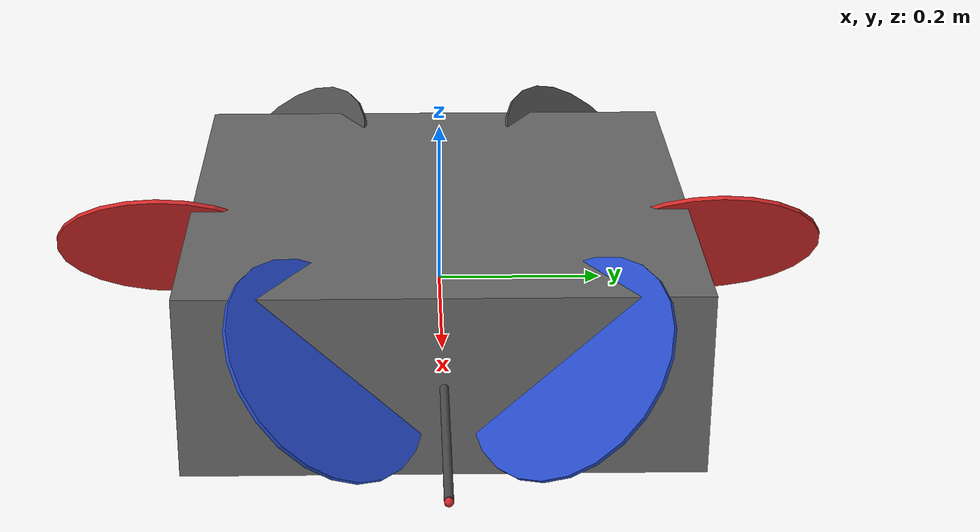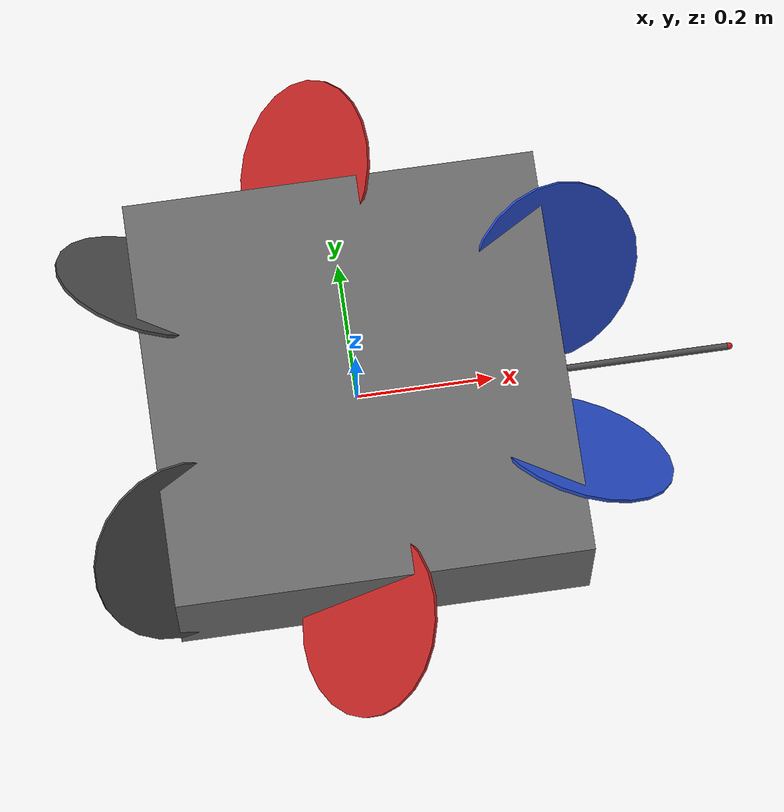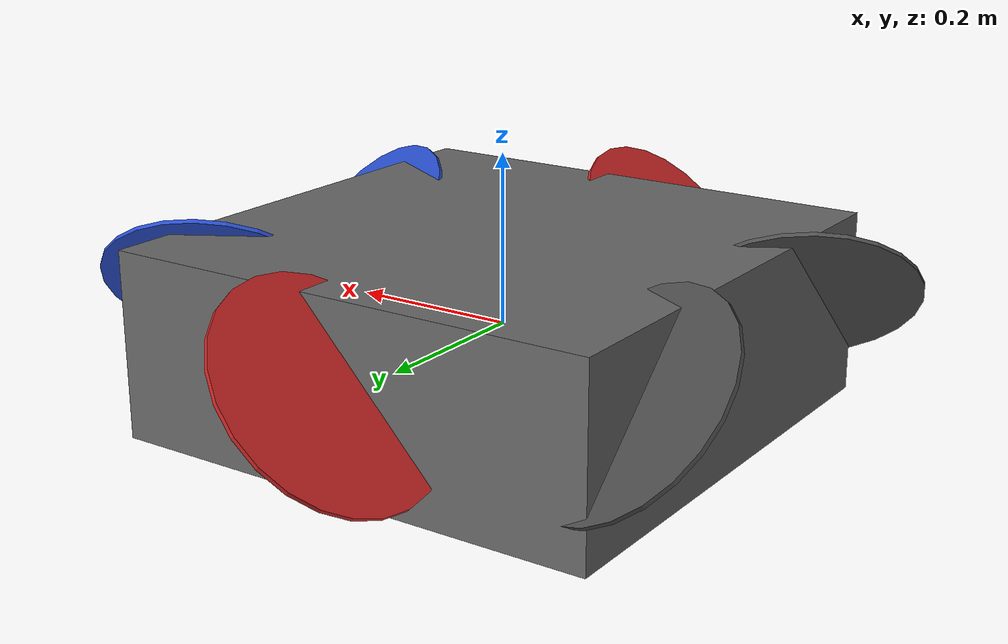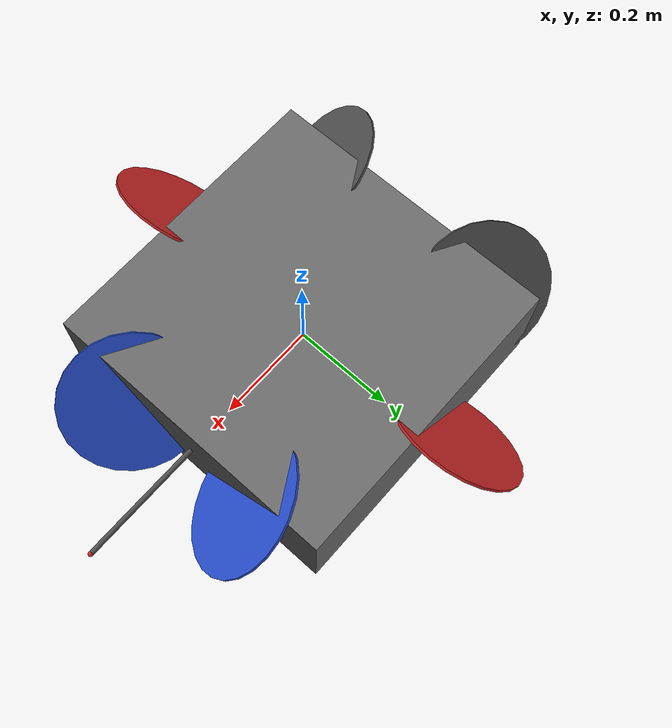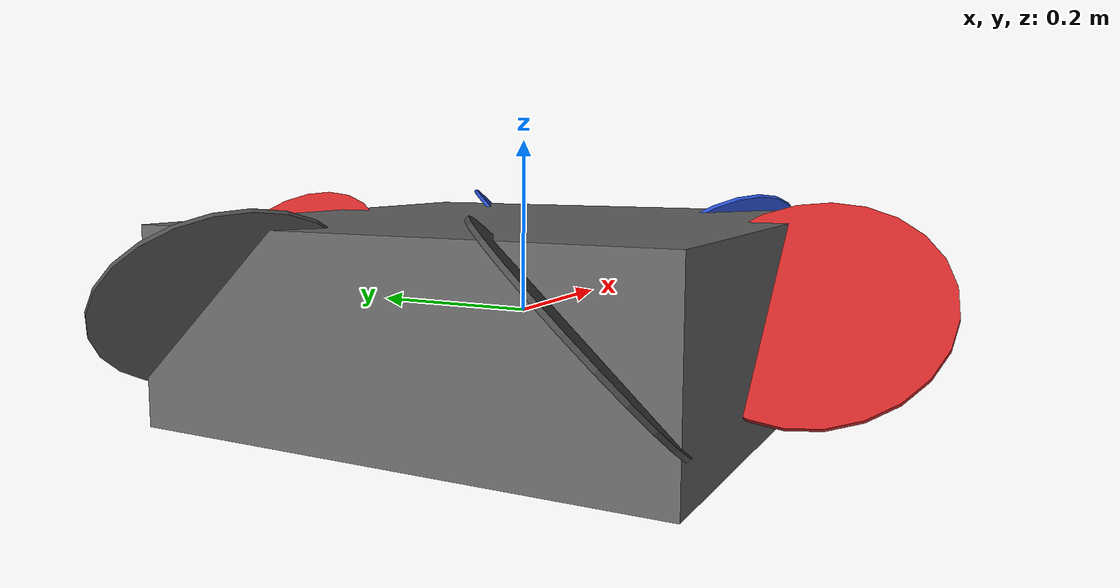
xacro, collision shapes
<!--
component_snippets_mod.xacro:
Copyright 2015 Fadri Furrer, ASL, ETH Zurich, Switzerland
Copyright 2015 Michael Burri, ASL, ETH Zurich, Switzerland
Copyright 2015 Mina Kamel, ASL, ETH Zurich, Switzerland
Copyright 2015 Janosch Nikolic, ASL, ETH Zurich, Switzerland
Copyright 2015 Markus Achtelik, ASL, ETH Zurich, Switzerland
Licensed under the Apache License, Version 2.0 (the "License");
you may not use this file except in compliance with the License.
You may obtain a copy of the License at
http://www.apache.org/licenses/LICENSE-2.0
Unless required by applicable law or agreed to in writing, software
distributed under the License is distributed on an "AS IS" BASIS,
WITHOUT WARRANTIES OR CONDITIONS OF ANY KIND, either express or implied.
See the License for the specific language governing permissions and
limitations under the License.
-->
<?xml version="1.0"?>

<robot name="betaX" xmlns:xacro="http://ros.org/wiki/xacro">
  <xacro:include filename="$(find spc_uav_description)/urdf/component_snippets_mod.xacro" />

    <!-- Included URDF Files -->
  <xacro:include filename="$(find spc_uav_description)/urdf/multirotor_base_mod.xacro" />

  <!-- Instantiate iris "mechanics" -->
  <xacro:include filename="$(find spc_uav_description)/urdf/betaX.xacro" />

    <xacro:arg name='mavlink_addr' default='INADDR_ANY' />
  <xacro:arg name='mavlink_udp_port' default='14560' />
  <xacro:arg name='enable_logging' default='false'/>
  <xacro:arg name='enable_ground_truth' default='false'/>
  <xacro:arg name='enable_mavlink_interface' default='true'/>
  <xacro:arg name='log_file' default='false'/>
  <xacro:arg name='wait_to_record_bag' default='false'/>
  <xacro:arg name='mav_name' default='betaX'/>
  <xacro:arg name='namespace' default=''/>

    <xacro:if value="$(arg enable_ground_truth)">
    <gazebo>
        <plugin name="ground_truth" filename="libgazebo_ros_p3d.so">
            <frameName>world</frameName>
            <bodyName>${namespace}/base_link</bodyName>
            <topicName>/$(arg mav_name)/ground_truth/odometry</topicName>
            <updateRate>200.0</updateRate>
        </plugin>
    </gazebo>

  </xacro:if>

  <xacro:if value="$(arg enable_mavlink_interface)">
  <!-- Instantiate mavlink telemetry interface. -->
  <xacro:mavlink_interface_macro
    namespace="${namespace}"
    imu_sub_topic="/imu"
    mavlink_addr="$(arg mavlink_addr)"
    mavlink_udp_port="$(arg mavlink_udp_port)"
    input_offset = "0.0"
    max_rot_velocity = "${max_rot_velocity}"
    >
  </xacro:mavlink_interface_macro>
  </xacro:if>

  <!-- Mount an ADIS16448 IMU. -->
  <xacro:imu_plugin_macro
    namespace="${namespace}"
    imu_suffix=""
    parent_link="${namespace}/base_link"
    imu_topic="/imu"
    mass_imu_sensor="0.015"
    gyroscope_noise_density="0.0003394"
    gyroscope_random_walk="0.000038785"
    gyroscope_bias_correlation_time="1000.0"
    gyroscope_turn_on_bias_sigma="0.0087"
    accelerometer_noise_density="0.004"
    accelerometer_random_walk="0.006"
    accelerometer_bias_correlation_time="300.0"
    accelerometer_turn_on_bias_sigma="0.1960"
  >
    <inertia ixx="0.00001" ixy="0.0" ixz="0.0" iyy="0.00001" iyz="0.0" izz="0.00001" />
    <origin xyz="0 0 0" rpy="0 0 0" />
  </xacro:imu_plugin_macro>

</robot>

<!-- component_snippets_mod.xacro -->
<robot xmlns:xacro="http://ros.org/wiki/xacro">
  <!-- Macro to add logging to a bag file. -->
  <xacro:macro name="bag_plugin_macro"
    params="namespace bag_file rotor_velocity_slowdown_sim">
    <gazebo>
      <plugin filename="librotors_gazebo_bag_plugin.so" name="rosbag">
        <robotNamespace>${namespace}</robotNamespace>
        <bagFileName>${bag_file}</bagFileName>
        <linkName>base_link</linkName>
        <frameId>base_link</frameId>
        <commandAttitudeThrustSubTopic>command/attitude</commandAttitudeThrustSubTopic>
        <commandAttitudeThrustPubTopic>command/attitude</commandAttitudeThrustPubTopic>
        <rotorVelocitySlowdownSim>${rotor_velocity_slowdown_sim}</rotorVelocitySlowdownSim>
      </plugin>
    </gazebo>
  </xacro:macro>

  <!-- Macro to add a camera. -->
  <xacro:macro name="camera_macro"
    params="namespace parent_link camera_suffix frame_rate
      horizontal_fov image_width image_height image_format min_distance
      max_distance noise_mean noise_stddev enable_visual *cylinder *origin">
    <link name="${namespace}/camera_${camera_suffix}_link">
      <collision>
        <origin xyz="0 0 0" rpy="0 0 0" />
        <geometry>
          <xacro:insert_block name="cylinder" />
        </geometry>
      </collision>
      <xacro:if value="${enable_visual}">
        <visual>
          <origin xyz="0 0 0" rpy="0 1.57079632679 0" />
          <geometry>
            <xacro:insert_block name="cylinder" />
          </geometry>
          <material name="red" />
        </visual>
      </xacro:if>
      <inertial>
        <mass value="1e-5" />
        <origin xyz="0 0 0" rpy="0 0 0" />
        <inertia ixx="1e-6" ixy="0" ixz="0" iyy="1e-6" iyz="0" izz="1e-6" />
      </inertial>
    </link>
    <joint name="${namespace}/camera_${camera_suffix}_joint" type="fixed">
      <xacro:insert_block name="origin" />
      <parent link="${parent_link}" />
      <child link="${namespace}/camera_${camera_suffix}_link" />
    </joint>
    <gazebo reference="${namespace}/camera_${camera_suffix}_link">
      <sensor type="camera" name="${namespace}_camera_${camera_suffix}">
        <update_rate>${frame_rate}</update_rate>
        <camera name="head">
          <horizontal_fov>${horizontal_fov}</horizontal_fov>
          <image>
            <width>${image_width}</width>
            <height>${image_height}</height>
            <format>${image_format}</format>
          </image>
          <clip>
            <near>${min_distance}</near>
            <far>${max_distance}</far>
          </clip>
          <noise>
            <type>gaussian</type>
            <!-- Noise is sampled independently per pixel on each frame.
                 That pixel's noise value is added to each of its color
                 channels, which at that point lie in the range [0,1]. -->
            <mean>${noise_mean}</mean>
            <stddev>${noise_stddev}</stddev>
          </noise>
        </camera>
        <plugin name="${namespace}_camera_${camera_suffix}_controller" filename="libgazebo_ros_camera.so">
          <robotNamespace>${namespace}</robotNamespace>
          <alwaysOn>true</alwaysOn>
          <updateRate>${frame_rate}</updateRate>
          <cameraName>camera_${camera_suffix}</cameraName>
          <imageTopicName>image_raw</imageTopicName>
          <cameraInfoTopicName>camera_info</cameraInfoTopicName>
          <frameName>camera_${camera_suffix}_link</frameName>
          <hackBaseline>0.0</hackBaseline>
          <distortionK1>0.0</distortionK1>
          <distortionK2>0.0</distortionK2>
          <distortionK3>0.0</distortionK3>
          <distortionT1>0.0</distortionT1>
          <distortionT2>0.0</distortionT2>
        </plugin>
      </sensor>
    </gazebo>
  </xacro:macro>

  <!-- Macro to add the controller interface. -->
  <xacro:macro name="controller_plugin_macro" params="namespace imu_sub_topic">
    <gazebo>
      <plugin name="controller_interface" filename="librotors_gazebo_controller_interface.so">
        <robotNamespace>${namespace}</robotNamespace>
        <commandAttitudeThrustSubTopic>/command/attitude</commandAttitudeThrustSubTopic>
        <commandRateThrustSubTopic>/command/rate</commandRateThrustSubTopic>
        <commandMotorSpeedSubTopic>/command/motor_speed</commandMotorSpeedSubTopic>
        <imuSubTopic>/${imu_sub_topic}</imuSubTopic>
        <motorSpeedCommandPubTopic>/gazebo/command/motor_speed</motorSpeedCommandPubTopic>
      </plugin>
    </gazebo>
  </xacro:macro>

  <!-- Macro to add the mavlink interface. -->
  <xacro:macro name="mavlink_interface_macro" params="namespace imu_sub_topic mavlink_addr mavlink_udp_port input_offset max_rot_velocity">
    <gazebo>
      <plugin name="mavlink_interface" filename="librotors_gazebo_mavlink_interface.so">
        <robotNamespace>${namespace}</robotNamespace>
        <imuSubTopic>${imu_sub_topic}</imuSubTopic>
        <mavlink_addr>$(arg mavlink_addr)</mavlink_addr>
        <mavlink_udp_port>$(arg mavlink_udp_port)</mavlink_udp_port>
        <motorSpeedCommandPubTopic>/gazebo/command/motor_speed</motorSpeedCommandPubTopic>
        <control_channels>
          <channel name="rotor1">
            <input_index>0</input_index>
            <input_offset>${input_offset}</input_offset>
            <input_scaling>${max_rot_velocity}</input_scaling>
            <zero_position_disarmed>0</zero_position_disarmed>
            <zero_position_armed>0</zero_position_armed>
            <joint_control_type>velocity</joint_control_type>
          </channel>
          <channel name="rotor2">
            <input_index>1</input_index>
            <input_offset>${input_offset}</input_offset>
            <input_scaling>${max_rot_velocity}</input_scaling>
            <zero_position_disarmed>0</zero_position_disarmed>
            <zero_position_armed>0</zero_position_armed>
            <joint_control_type>velocity</joint_control_type>
          </channel>
          <channel name="rotor3">
            <input_index>2</input_index>
            <input_offset>${input_offset}</input_offset>
            <input_scaling>${max_rot_velocity}</input_scaling>
            <zero_position_disarmed>0</zero_position_disarmed>
            <zero_position_armed>0</zero_position_armed>
            <joint_control_type>velocity</joint_control_type>
          </channel>
          <channel name="rotor4">
            <input_index>3</input_index>
            <input_offset>${input_offset}</input_offset>
            <input_scaling>${max_rot_velocity}</input_scaling>
            <zero_position_disarmed>0</zero_position_disarmed>
            <zero_position_armed>0</zero_position_armed>
            <joint_control_type>velocity</joint_control_type>
          </channel>
          <channel name="rotor5">
            <input_index>4</input_index>
            <input_offset>${input_offset}</input_offset>
            <input_scaling>${max_rot_velocity}</input_scaling>
            <zero_position_disarmed>0</zero_position_disarmed>
            <zero_position_armed>0</zero_position_armed>
            <joint_control_type>velocity</joint_control_type>
          </channel>
          <channel name="rotor6">
            <input_index>5</input_index>
            <input_offset>${input_offset}</input_offset>
            <input_scaling>${max_rot_velocity}</input_scaling>
            <zero_position_disarmed>0</zero_position_disarmed>
            <zero_position_armed>0</zero_position_armed>
            <joint_control_type>velocity</joint_control_type>
          </channel>
        </control_channels>
      </plugin>
    </gazebo>
  </xacro:macro>

  <!-- Macro to add an IMU. -->
  <xacro:macro name="imu_plugin_macro"
    params="namespace imu_suffix parent_link imu_topic
      mass_imu_sensor gyroscope_noise_density gyroscope_random_walk
      gyroscope_bias_correlation_time gyroscope_turn_on_bias_sigma
      accelerometer_noise_density accelerometer_random_walk
      accelerometer_bias_correlation_time accelerometer_turn_on_bias_sigma
      *inertia *origin">
    <!-- IMU link -->
    <link name="${namespace}/imu${imu_suffix}_link">
      <inertial>
        <xacro:insert_block name="inertia" />
        <mass value="${mass_imu_sensor}" />  <!-- [kg] -->
        <origin xyz="0 0 0" rpy="0 0 0" />
      </inertial>
    </link>
    <!-- IMU joint -->
    <joint name="${namespace}/imu${imu_suffix}_joint" type="revolute">
      <xacro:insert_block name="origin" />
      <parent link="${parent_link}" />
      <child link="${namespace}/imu${imu_suffix}_link" />
      <limit upper="0" lower="0" effort="0" velocity="0" />
    </joint>
    <gazebo>
      <plugin filename="librotors_gazebo_imu_plugin.so" name="rotors_gazebo_imu${imu_suffix}_plugin">
      <!-- A good description of the IMU parameters can be found in the kalibr documentation:
           https://github.com/ethz-asl/kalibr/wiki/IMU-Noise-Model-and-Intrinsics -->
        <robotNamespace>${namespace}</robotNamespace> <!-- (string, required): ros namespace in which the messages are published -->
        <linkName>${namespace}/imu${imu_suffix}_link</linkName> <!-- (string, required): name of the body which holds the IMU sensor -->
        <imuTopic>${imu_topic}</imuTopic> <!-- (string): name of the sensor output topic and prefix of service names (defaults to imu) -->
        <gyroscopeNoiseDensity>${gyroscope_noise_density}</gyroscopeNoiseDensity> <!-- Gyroscope noise density (two-sided spectrum) [rad/s/sqrt(Hz)] -->
        <gyroscopeRandomWalk>${gyroscope_random_walk}</gyroscopeRandomWalk> <!-- Gyroscope bias random walk [rad/s/s/sqrt(Hz)] -->
        <gyroscopeBiasCorrelationTime>${gyroscope_bias_correlation_time}</gyroscopeBiasCorrelationTime> <!-- Gyroscope bias correlation time constant [s] -->
        <gyroscopeTurnOnBiasSigma>${gyroscope_turn_on_bias_sigma}</gyroscopeTurnOnBiasSigma> <!-- Gyroscope turn on bias standard deviation [rad/s] -->
        <accelerometerNoiseDensity>${accelerometer_noise_density}</accelerometerNoiseDensity> <!-- Accelerometer noise density (two-sided spectrum) [m/s^2/sqrt(Hz)] -->
        <accelerometerRandomWalk>${accelerometer_random_walk}</accelerometerRandomWalk> <!-- Accelerometer bias random walk. [m/s^2/s/sqrt(Hz)] -->
        <accelerometerBiasCorrelationTime>${accelerometer_bias_correlation_time}</accelerometerBiasCorrelationTime> <!-- Accelerometer bias correlation time constant [s] -->
        <accelerometerTurnOnBiasSigma>${accelerometer_turn_on_bias_sigma}</accelerometerTurnOnBiasSigma> <!-- Accelerometer turn on bias standard deviation [m/s^2] -->
      </plugin>
    </gazebo>
  </xacro:macro>

<!-- Macro to add a generic odometry sensor. -->
  <xacro:macro name="odometry_plugin_macro"
    params="
      namespace odometry_sensor_suffix parent_link pose_topic pose_with_covariance_topic
      position_topic transform_topic odometry_topic parent_frame_id child_frame_id
      mass_odometry_sensor measurement_divisor measurement_delay unknown_delay
      noise_normal_position noise_normal_quaternion noise_normal_linear_velocity
      noise_normal_angular_velocity noise_uniform_position
      noise_uniform_quaternion noise_uniform_linear_velocity
      noise_uniform_angular_velocity enable_odometry_map odometry_map
      image_scale *inertia *origin">
    <!-- odometry link -->
    <link name="${namespace}/odometry_sensor${odometry_sensor_suffix}_link">
      <inertial>
        <xacro:insert_block name="inertia" />
        <mass value="${mass_odometry_sensor}" />  <!-- [kg] -->
      </inertial>
    </link>
    <!-- odometry joint -->
    <joint name="${namespace}/odometry_sensor${odometry_sensor_suffix}_joint" type="revolute">
      <parent link="${parent_link}" />
      <xacro:insert_block name="origin" />
      <child link="${namespace}/odometry_sensor${odometry_sensor_suffix}_link" />
      <limit upper="0" lower="0" effort="0" velocity="0" />
    </joint>
    <gazebo>
      <plugin filename="librotors_gazebo_odometry_plugin.so" name="odometry_sensor${odometry_sensor_suffix}">
        <linkName>${namespace}/odometry_sensor${odometry_sensor_suffix}_link</linkName>
        <robotNamespace>${namespace}</robotNamespace>
        <poseTopic>${pose_topic}</poseTopic>
        <poseWithCovarianceTopic>${pose_with_covariance_topic}</poseWithCovarianceTopic>
        <positionTopic>${position_topic}</positionTopic>
        <transformTopic>${transform_topic}</transformTopic>
        <odometryTopic>${odometry_topic}</odometryTopic>
        <parentFrameId>${parent_frame_id}</parentFrameId>  <!-- Use the scoped link name here. e.g. Model::link. -->
        <childFrameId>${child_frame_id}</childFrameId>
        <measurementDivisor>${measurement_divisor}</measurementDivisor> <!-- only every (seq % measurementDivisor) == 0 measurement is published [int] -->
        <measurementDelay>${measurement_delay}</measurementDelay> <!-- time that measurement gets held back before it's published in [simulation cycles (int)] -->
        <unknownDelay>${unknown_delay}</unknownDelay> <!-- additional delay, that just gets added to the timestamp [s] -->
        <noiseNormalPosition>${noise_normal_position}</noiseNormalPosition> <!-- standard deviation of additive white gaussian noise [m] -->
        <noiseNormalQuaternion>${noise_normal_quaternion}</noiseNormalQuaternion> <!-- standard deviation white gaussian noise [rad]: q_m = q*quaternionFromSmallAngleApproximation(noiseNormalQ) -->
        <noiseNormalLinearVelocity>${noise_normal_linear_velocity}</noiseNormalLinearVelocity> <!-- standard deviation of additive white gaussian noise [m/s] -->
        <noiseNormalAngularVelocity>${noise_normal_angular_velocity}</noiseNormalAngularVelocity> <!-- standard deviation of additive white gaussian noise [rad/s] -->
        <noiseUniformPosition>${noise_uniform_position}</noiseUniformPosition> <!-- symmetric bounds of uniform noise [m] -->
        <noiseUniformQuaternion>${noise_uniform_quaternion}</noiseUniformQuaternion> <!-- symmetric bounds of uniform noise [rad], computation see above -->
        <noiseUniformLinearVelocity>${noise_uniform_linear_velocity}</noiseUniformLinearVelocity>  <!-- symmetric bounds of uniform noise [m/s] -->
        <noiseUniformAngularVelocity>${noise_uniform_angular_velocity}</noiseUniformAngularVelocity>  <!-- symmetric bounds of uniform noise [rad/s] -->
        <xacro:if value="${enable_odometry_map}">
          <covarianceImage>package://rotors_gazebo/resource/${odometry_map}</covarianceImage>
          <covarianceImageScale>${image_scale}</covarianceImageScale>
        </xacro:if>
      </plugin>
    </gazebo>
  </xacro:macro>

  <!-- Macro to add the wind plugin. -->
  <xacro:macro name="wind_plugin_macro"
    params="namespace xyz_offset wind_direction wind_force_mean
      wind_gust_direction wind_gust_duration wind_gust_start
      wind_gust_force_mean">
    <gazebo>
      <plugin filename="librotors_gazebo_wind_plugin.so" name="wind_plugin">
        <frameId>base_link</frameId>
        <linkName>base_link</linkName>
        <robotNamespace>${namespace}</robotNamespace>
        <xyzOffset>${xyz_offset}</xyzOffset>
        <windDirection>${wind_direction}</windDirection>
        <windForceMean>${wind_force_mean}</windForceMean>
        <windGustDirection>${wind_gust_direction}</windGustDirection>
        <windGustDuration>${wind_gust_duration}</windGustDuration>
        <windGustStart>${wind_gust_start}</windGustStart>
        <windGustForceMean>${wind_gust_force_mean}</windGustForceMean>
      </plugin>
    </gazebo>
  </xacro:macro>

  <!-- VI sensor macros -->
  <!-- Macro to add a VI-sensor camera. -->
  <xacro:macro name="vi_sensor_camera_macro"
    params="namespace parent_link camera_suffix frame_rate *origin">
    <xacro:camera_macro
      namespace="${namespace}"
      parent_link="${parent_link}"
      camera_suffix="${camera_suffix}"
      frame_rate="${frame_rate}"
      horizontal_fov="1.3962634"
      image_width="752"
      image_height="480"
      image_format="L8"
      min_distance="0.02"
      max_distance="30"
      noise_mean="0.0"
      noise_stddev="0.007"
      enable_visual="false">
      <cylinder length="0.01" radius="0.007" />
      <xacro:insert_block name="origin" />
    </xacro:camera_macro>
  </xacro:macro>

  <!-- Macro to add a depth camera on the VI-sensor. -->
  <xacro:macro name="vi_sensor_depth_macro"
    params="namespace parent_link camera_suffix frame_rate *origin">
    <link name="${namespace}/camera_${camera_suffix}_link">
      <collision>
        <origin xyz="0 0 0" rpy="0 0 0" />
        <geometry>
          <cylinder length="0.01" radius="0.007" />
        </geometry>
      </collision>
      <inertial>
        <mass value="1e-5" />
        <origin xyz="0 0 0" rpy="0 0 0" />
        <inertia ixx="1e-6" ixy="0" ixz="0" iyy="1e-6" iyz="0" izz="1e-6" />
      </inertial>
    </link>
    <joint name="${namespace}/camera_${camera_suffix}_joint" type="fixed">
      <xacro:insert_block name="origin" />
      <parent link="${parent_link}" />
      <child link="${namespace}/camera_${camera_suffix}_link" />
      <limit upper="0" lower="0" effort="0" velocity="0" />
    </joint>
    <!-- Optical center of camera -->
    <link name="${namespace}/camera_${camera_suffix}_optical_center_link" />
    <joint name="${namespace}/camera_${camera_suffix}_optical_center_joint" type="fixed">
      <origin xyz="0 0 0" rpy="${-PI/2} 0 ${-PI/2}" />
      <parent link="${namespace}/camera_${camera_suffix}_link" />
      <child link="${namespace}/camera_${camera_suffix}_optical_center_link" />
      <limit upper="0" lower="0" effort="0" velocity="0" />
    </joint>
    <gazebo reference="${namespace}/camera_${camera_suffix}_link">
      <sensor type="depth" name="${namespace}_camera_{camera_suffix}">
        <always_on>true</always_on>
        <update_rate>${frame_rate}</update_rate>
        <camera>
          <horizontal_fov>2</horizontal_fov>
          <image>
            <format>L8</format>
            <width>640</width>
            <height>480</height>
          </image>
          <clip>
            <near>0.01</near>
            <far>100</far>
          </clip>
        </camera>
        <plugin name="${namespace}_camera_{camera_suffix}" filename="libgazebo_ros_openni_kinect.so">
          <robotNamespace>${namespace}</robotNamespace>
          <alwaysOn>true</alwaysOn>
          <baseline>0.11</baseline>
          <updateRate>${frame_rate}</updateRate>
          <cameraName>camera_${camera_suffix}</cameraName>
          <imageTopicName>camera/image_raw</imageTopicName>
          <cameraInfoTopicName>camera/camera_info</cameraInfoTopicName>
          <depthImageTopicName>depth/disparity</depthImageTopicName>
          <depthImageCameraInfoTopicName>depth/camera_info</depthImageCameraInfoTopicName>
          <pointCloudTopicName>depth/points</pointCloudTopicName>
          <frameName>camera_${camera_suffix}_optical_center_link</frameName>
          <pointCloudCutoff>0.5</pointCloudCutoff>
          <distortionK1>0.0</distortionK1>
          <distortionK2>0.0</distortionK2>
          <distortionK3>0.0</distortionK3>
          <distortionT1>0.0</distortionT1>
          <distortionT2>0.0</distortionT2>
        </plugin>
      </sensor>
    </gazebo>
  </xacro:macro>

  <!-- VI-Sensor Macro -->
  <xacro:macro name="vi_sensor_macro" params="namespace parent_link *origin">
    <!-- Vi Sensor Link -->
    <link name="${namespace}/vi_sensor_link">
      <collision>
        <origin xyz="0 0 0" rpy="0 0 0" />
        <geometry>
          <box size="0.03 0.133 0.057" />
        </geometry>
      </collision>

      <visual>
        <origin xyz="0 0 0" rpy="0 0 0" />
        <geometry>
          <mesh filename="package://rotors_description/meshes/vi_sensor.dae" scale="1 1 1" />
        </geometry>
      </visual>

      <inertial>
        <mass value="0.13" />
        <origin xyz="0 0 0" rpy="0 0 0" />
        <inertia ixx="1e-6" ixy="0" ixz="0" iyy="1e-6" iyz="0" izz="1e-6" />
      </inertial>
    </link>
    <joint name="{namespace}_vi_sensor_joint" type="fixed">
      <xacro:insert_block name="origin" />
      <parent link="${parent_link}" />
      <child link="${namespace}/vi_sensor_link" />
    </joint>
    <!-- Cameras -->
    <xacro:if value="$(arg enable_cameras)">
      <!-- Left Camera -->
      <xacro:vi_sensor_camera_macro
        namespace="${namespace}" parent_link="${namespace}/vi_sensor_link"
        camera_suffix="left" frame_rate="30.0">
        <origin xyz="0.015 0.055 0.0065" rpy="0 0 0" />
      </xacro:vi_sensor_camera_macro>
      <!-- Right Camera -->
      <xacro:vi_sensor_camera_macro namespace="${namespace}"
        parent_link="${namespace}/vi_sensor_link"
        camera_suffix="right" frame_rate="30.0">
        <origin xyz="0.015 -0.055 0.0065" rpy="0 0 0" />
      </xacro:vi_sensor_camera_macro>
    </xacro:if>

    <!-- Depth Sensor -->
    <xacro:if value="$(arg enable_depth)">
      <xacro:vi_sensor_depth_macro
        namespace="${namespace}" parent_link="${namespace}/vi_sensor_link"
        camera_suffix="depth" frame_rate="30.0">
        <origin xyz="0.015 0.055 0.0065" rpy="0 0 0" />
      </xacro:vi_sensor_depth_macro>
    </xacro:if>

    <!-- Groundtruth -->
    <xacro:if value="$(arg enable_ground_truth)">
      <!-- Odometry Sensor -->
      <xacro:odometry_plugin_macro
        namespace="${namespace}/ground_truth"
        odometry_sensor_suffix=""
        parent_link="${namespace}/vi_sensor_link"
        pose_topic="pose"
        pose_with_covariance_topic="pose_with_covariance"
        position_topic="position"
        transform_topic="transform"
        odometry_topic="odometry"
        parent_frame_id="world"
        mass_odometry_sensor="0.00001"
        measurement_divisor="1"
        measurement_delay="0"
        unknown_delay="0.0"
        noise_normal_position="0 0 0"
        noise_normal_quaternion="0 0 0"
        noise_normal_linear_velocity="0 0 0"
        noise_normal_angular_velocity="0 0 0"
        noise_uniform_position="0 0 0"
        noise_uniform_quaternion="0 0 0"
        noise_uniform_linear_velocity="0 0 0"
        noise_uniform_angular_velocity="0 0 0"
        enable_odometry_map="false"
        odometry_map=""
        image_scale="">
        <inertia ixx="0.00001" ixy="0.0" ixz="0.0" iyy="0.00001" iyz="0.0" izz="0.00001" /> <!-- [kg.m^2] [kg.m^2] [kg.m^2] [kg.m^2] [kg.m^2] [kg.m^2] -->
        <origin xyz="0.0 0.0 0.0" rpy="0.0 0.0 0.0" />
      </xacro:odometry_plugin_macro>
    </xacro:if>

    <!-- ADIS16448 IMU. -->
    <xacro:imu_plugin_macro
      namespace="${namespace}"
      imu_suffix=""
      parent_link="${namespace}/vi_sensor_link"
      imu_topic="/imu"
      mass_imu_sensor="0.015"
      gyroscope_noise_density="0.0003394"
      gyroscope_random_walk="0.000038785"
      gyroscope_bias_correlation_time="1000.0"
      gyroscope_turn_on_bias_sigma="0.0087"
      accelerometer_noise_density="0.004"
      accelerometer_random_walk="0.006"
      accelerometer_bias_correlation_time="300.0"
      accelerometer_turn_on_bias_sigma="0.1960">
      <inertia ixx="0.00001" ixy="0.0" ixz="0.0" iyy="0.00001" iyz="0.0" izz="0.00001" />
      <origin xyz="0.015 0 0.0113" rpy="0 0 0" />
    </xacro:imu_plugin_macro>
  </xacro:macro>

  <xacro:macro name="ground_truth_imu_and_odometry" params="namespace parent_link">
    <!-- Mount an IMU providing ground truth. -->
    <xacro:imu_plugin_macro
      namespace="${namespace}"
      imu_suffix="gt"
      parent_link="${parent_link}"
      imu_topic="ground_truth/imu"
      mass_imu_sensor="0.00001"
      gyroscope_noise_density="0.0"
      gyroscope_random_walk="0.0"
      gyroscope_bias_correlation_time="1000.0"
      gyroscope_turn_on_bias_sigma="0.0"
      accelerometer_noise_density="0.0"
      accelerometer_random_walk="0.0"
      accelerometer_bias_correlation_time="300.0"
      accelerometer_turn_on_bias_sigma="0.0">
      <inertia ixx="0.00001" ixy="0.0" ixz="0.0" iyy="0.00001" iyz="0.0" izz="0.00001" />
      <origin xyz="0 0 0" rpy="0 0 0" />
    </xacro:imu_plugin_macro>

    <!-- Mount a generic odometry sensor providing ground truth. -->
    <xacro:odometry_plugin_macro
      namespace="${namespace}"
      odometry_sensor_suffix="gt"
      parent_link="${parent_link}"
      pose_topic="ground_truth/pose"
      pose_with_covariance_topic="ground_truth/pose_with_covariance"
      position_topic="ground_truth/position"
      transform_topic="ground_truth/transform"
      odometry_topic="ground_truth/odometry"
      parent_frame_id="world"
      child_frame_id="${namespace}/base_link"
      mass_odometry_sensor="0.00001"
      measurement_divisor="1"
      measurement_delay="0"
      unknown_delay="0.0"
      noise_normal_position="0 0 0"
      noise_normal_quaternion="0 0 0"
      noise_normal_linear_velocity="0 0 0"
      noise_normal_angular_velocity="0 0 0"
      noise_uniform_position="0 0 0"
      noise_uniform_quaternion="0 0 0"
      noise_uniform_linear_velocity="0 0 0"
      noise_uniform_angular_velocity="0 0 0"
      enable_odometry_map="false"
      odometry_map=""
      image_scale="">
      <inertia ixx="0.00001" ixy="0.0" ixz="0.0" iyy="0.00001" iyz="0.0" izz="0.00001" /> <!-- [kg m^2] [kg m^2] [kg m^2] [kg m^2] [kg m^2] [kg m^2] -->
      <origin xyz="0.0 0.0 0.0" rpy="0.0 0.0 0.0" />
    </xacro:odometry_plugin_macro>
  </xacro:macro>

</robot>

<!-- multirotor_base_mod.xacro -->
<robot xmlns:xacro="http://ros.org/wiki/xacro">
  <!-- Macro for the inertia of a box -->
  <xacro:macro name="box_inertia" params="x y z mass">
    <inertia ixx="${0.0833333 * mass * (y*y + z*z)}" ixy="0.0" ixz="0.0"
      iyy="${0.0833333 * mass * (x*x + z*z)}" iyz="0.0"
      izz="${0.0833333 * mass * (x*x + y*y)}" />
  </xacro:macro>

  <!-- Macro for the inertial properties of a box -->
  <xacro:macro name="box_inertial" params="x y z mass *origin">
    <inertial>
      <mass value="${mass}" />
      <xacro:insert_block name="origin" />
      <xacro:box_inertia x="${x}" y="${y}" z="${z}" mass="${mass}" />
    </inertial>
  </xacro:macro>

    <material name="darkGrey">
        <color rgba="0.411 0.411 0.411 1"/>
    </material>

  <!-- Main multirotor link -->
  <xacro:macro name="multirotor_base_macro"
    params="robot_namespace mass body_width body_height use_mesh_file mesh_file *inertia">
    <link name="${robot_namespace}/base_link"></link>

    <joint name="${robot_namespace}/base_joint" type="fixed">
      <origin xyz="0 0 0" rpy="0 0 0" />
      <parent link="${robot_namespace}/base_link" />
      <child link="${robot_namespace}/base_link_inertia" />
    </joint>

    <link name="${robot_namespace}/base_link_inertia">
      <inertial>
        <mass value="${mass}" />  <!-- [kg] -->
        <origin xyz="0 0 0" />
        <xacro:insert_block name="inertia" />
      </inertial>

      <visual>
        <origin xyz="0 0 0" rpy="0 0 0" />
        <geometry>
          <xacro:if value="${use_mesh_file}">
            <mesh filename="${mesh_file}" scale="1 1 1" />
          </xacro:if>
          <xacro:unless value="${use_mesh_file}">
            <box size="${body_width} ${body_width} ${body_height}"/>
          </xacro:unless>
        </geometry>
        <material name="darkGrey"/>
      </visual>

      <collision>
        <origin xyz="0 0 0" rpy="0 0 0" />
        <geometry>
          <box size="${body_width} ${body_width} ${body_height}" />
        </geometry>
      </collision>
    </link>

    <!-- attach multirotor_base_plugin to the base_link -->
    <gazebo>
      <plugin filename="librotors_gazebo_multirotor_base_plugin.so" name="multirotor_base_plugin">
        <robotNamespace>${robot_namespace}</robotNamespace>
        <linkName>${robot_namespace}/base_link</linkName>
        <rotorVelocitySlowdownSim>${rotor_velocity_slowdown_sim}</rotorVelocitySlowdownSim>
      </plugin>
    </gazebo>
    <gazebo reference="${robot_namespace}/base_link">
      <collision name='${robot_namespace}/base_link_inertia_collision'>
        <surface>
          <contact>
            <ode>
              <min_depth>0.001</min_depth>
              <max_vel>0.0</max_vel>
            </ode>
          </contact>
          <friction>
            <ode/>
          </friction>
        </surface>
      </collision>
   </gazebo>

  </xacro:macro>

  <!-- Rotor joint and link -->
  <xacro:macro name="vertical_rotor"
    params="robot_namespace suffix direction motor_constant moment_constant parent mass_rotor radius_rotor time_constant_up time_constant_down max_rot_velocity motor_number rotor_drag_coefficient rolling_moment_coefficient color use_own_mesh mesh *origin *inertia">
    <joint name="${robot_namespace}/rotor_${motor_number}_joint" type="continuous">
      <xacro:insert_block name="origin" />
      <axis xyz="0 0 1" />
      <!-- TODO(ff): not currently set because it's not yet supported -->
      <parent link="${parent}" />
      <child link="${robot_namespace}/rotor_${motor_number}" />
    </joint>
    <link name="${robot_namespace}/rotor_${motor_number}">
      <inertial>
        <mass value="${mass_rotor}" /> <!-- [kg] -->
        <xacro:insert_block name="inertia" />
      </inertial>
      <visual>
        <geometry>

          <xacro:if value="${use_own_mesh}">
            <mesh filename="${mesh}"
              scale="1 1 1" />
          </xacro:if>
          <xacro:unless value="${use_own_mesh}">
            <mesh filename="package://spc_uav_description/meshes/propeller_${direction}.dae"
              scale="${radius_rotor} ${radius_rotor} ${radius_rotor}" /> <!-- The propeller meshes have a radius of 1m -->
          </xacro:unless>
        </geometry>
      </visual>
      <collision>
        <geometry>
          <cylinder length="0.005" radius="${radius_rotor}" />
        </geometry>
      </collision>
    </link>
    <gazebo>
      <plugin name="${robot_namespace}_${suffix}_motor_model" filename="librotors_gazebo_motor_model.so">
        <robotNamespace>${robot_namespace}</robotNamespace>
        <jointName>${robot_namespace}/rotor_${motor_number}_joint</jointName>
        <linkName>${robot_namespace}/rotor_${motor_number}</linkName>
        <turningDirection>${direction}</turningDirection>
        <timeConstantUp>${time_constant_up}</timeConstantUp>
        <timeConstantDown>${time_constant_down}</timeConstantDown>
        <maxRotVelocity>${max_rot_velocity}</maxRotVelocity>
        <motorConstant>${motor_constant}</motorConstant>
        <momentConstant>${moment_constant}</momentConstant>
        <commandSubTopic>/gazebo/command/motor_speed</commandSubTopic>
        <motorNumber>${motor_number}</motorNumber>
        <rotorDragCoefficient>${rotor_drag_coefficient}</rotorDragCoefficient>
        <rollingMomentCoefficient>${rolling_moment_coefficient}</rollingMomentCoefficient>
        <motorSpeedPubTopic>motor_speed/${motor_number}</motorSpeedPubTopic>
        <rotorVelocitySlowdownSim>${rotor_velocity_slowdown_sim}</rotorVelocitySlowdownSim>
      </plugin>
    </gazebo>
    <gazebo reference="${robot_namespace}/rotor_${motor_number}">
      <material>Gazebo/${color}</material>
    </gazebo>
  </xacro:macro>
</robot>

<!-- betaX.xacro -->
<robot name="betaX" xmlns:xacro="http://ros.org/wiki/xacro">
  <!-- Properties -->
  <xacro:property name="namespace" value="" />
  <xacro:property name="rotor_velocity_slowdown_sim" value="25" />
  <xacro:property name="use_mesh_file" value="true" />
  <xacro:property name="mesh_file" value="package://spc_uav_description/meshes/betaX.stl" />
  <xacro:property name="mass" value="1.73" /> <!-- [kg] -->
  <xacro:property name="body_width" value="0.6" />
  <xacro:property name="body_height" value="0.22" />
  <xacro:property name="mass_rotor" value="0.01" /> <!-- [kg] -->
  <xacro:property name="rotor_offset_top" value="0.08" />
  <xacro:property name="radius_rotor" value="0.1379" />
  <!-- BetaX 1.0  -->
  <xacro:property name="motor_constant" value="2.031e-5" /> <!-- [kg.m/s^2] -->
  <!-- BetaX 2.0  -->
  <xacro:property name="moment_constant" value="0.0135" />
  <xacro:property name="time_constant_up" value="0.0182" />
  <xacro:property name="time_constant_down" value="0.0182" />
    <!-- BetaX 1.0  -->
  <xacro:property name="max_rot_velocity" value="920" /> <!-- [rad/s] -->
    <!-- BetaX 2.0  -->
  <xacro:property name="sin30" value="0.5" />
  <xacro:property name="cos30" value="0.866025403784" />
  <xacro:property name="tilt_angle" value="0.820305" />
  <xacro:property name="sqrt2" value="1.4142135623730951" />
  <xacro:property name="rotor_drag_coefficient" value="8.94e-07" />
  <xacro:property name="rolling_moment_coefficient" value="1e-06" />
  <xacro:property name="arm_color" value="DarkGrey" />

  <xacro:property name="arm_mass" value="0.05" /> <!-- [kg] -->
  <xacro:property name="arm_length" value="0.55" />
  <xacro:property name="tip_radius" value="0.005" />

  <!-- Property Blocks -->
  <xacro:property name="body_inertia">
    <inertia ixx="0.05097" ixy="0.0" ixz="0.0" iyy="0.05027" iyz="0.0" izz="0.09434" /> <!-- [kg.m^2] [kg.m^2] [kg.m^2] [kg.m^2] [kg.m^2] [kg.m^2] -->
  </xacro:property>

  <!-- inertia of a single rotor, assuming it is a cuboid. Height=3mm, width=15mm -->
  <xacro:property name="rotor_inertia">
    <xacro:box_inertia x="${radius_rotor}" y="0.015" z="0.003" mass="${mass_rotor}" />
  </xacro:property>

  <!-- Instantiate multirotor_base_macro once -->
  <xacro:multirotor_base_macro
    robot_namespace="${namespace}"
    mass="${mass}"
    body_width="${body_width}"
    body_height="${body_height}"
    use_mesh_file="${use_mesh_file}"
    mesh_file="${mesh_file}"
    >
    <xacro:insert_block name="body_inertia" />
  </xacro:multirotor_base_macro>
    <gazebo reference="${namespace}/base_link">
      <material>Gazebo/DarkGrey</material>
    </gazebo>

<!-- Instantiate rotors -->
  <!-- The layout is:
    Front
    3   5
     \|/
   2- = -1
     / \
    6   4
    Back
  -->

  <xacro:vertical_rotor
    robot_namespace="${namespace}"
    suffix="right"
    direction="cw"
    motor_constant="${motor_constant}"
    moment_constant="${moment_constant}"
    parent="${namespace}/base_link"
    mass_rotor="${mass_rotor}"
    radius_rotor="${radius_rotor}"
    time_constant_up="${time_constant_up}"
    time_constant_down="${time_constant_down}"
    motor_number="0"
    max_rot_velocity="${max_rot_velocity}"
    rotor_drag_coefficient="${rotor_drag_coefficient}"
    rolling_moment_coefficient="${rolling_moment_coefficient}"
    use_own_mesh="false"
    mesh=""
    color="Red">
    <origin xyz="-0.03 -0.34 0.03" rpy="${tilt_angle} 0 -1.5708" />
    <xacro:insert_block name="rotor_inertia" />
  </xacro:vertical_rotor>

    <xacro:vertical_rotor
    robot_namespace="${namespace}"
    suffix="left"
    direction="ccw"
    motor_constant="${motor_constant}"
    moment_constant="${moment_constant}"
    parent="${namespace}/base_link"
    mass_rotor="${mass_rotor}"
    radius_rotor="${radius_rotor}"
    time_constant_up="${time_constant_up}"
    time_constant_down="${time_constant_down}"
    motor_number="1"
    max_rot_velocity="${max_rot_velocity}"
    rotor_drag_coefficient="${rotor_drag_coefficient}"
    rolling_moment_coefficient="${rolling_moment_coefficient}"
    use_own_mesh="false"
    mesh=""
    color="Red">
    <origin xyz="-0.03 0.34 0.03" rpy="-${tilt_angle} 0 1.5708" />
    <xacro:insert_block name="rotor_inertia" />
  </xacro:vertical_rotor>

  <xacro:vertical_rotor
    robot_namespace="${namespace}"
    suffix="front_left"
    direction="cw"
    motor_constant="${motor_constant}"
    moment_constant="${moment_constant}"
    parent="${namespace}/base_link"
    mass_rotor="${mass_rotor}"
    radius_rotor="${radius_rotor}"
    time_constant_up="${time_constant_up}"
    time_constant_down="${time_constant_down}"
    motor_number="2"
    max_rot_velocity="${max_rot_velocity}"
    rotor_drag_coefficient="${rotor_drag_coefficient}"
    rolling_moment_coefficient="${rolling_moment_coefficient}"
    use_own_mesh="false"
    mesh=""
    color="Blue">
    <origin xyz="0.31 0.14 0.03" rpy="${tilt_angle} 0 0.523599" />
    <xacro:insert_block name="rotor_inertia" />
  </xacro:vertical_rotor>

  <xacro:vertical_rotor
    robot_namespace="${namespace}"
    suffix="back_right"
    direction="ccw"
    motor_constant="${motor_constant}"
    moment_constant="${moment_constant}"
    parent="${namespace}/base_link"
    mass_rotor="${mass_rotor}"
    radius_rotor="${radius_rotor}"
    time_constant_up="${time_constant_up}"
    time_constant_down="${time_constant_down}"
    motor_number="3"
    max_rot_velocity="${max_rot_velocity}"
    rotor_drag_coefficient="${rotor_drag_coefficient}"
    rolling_moment_coefficient="${rolling_moment_coefficient}"
    use_own_mesh="false"
    mesh=""
    color="DarkGrey">
    <origin xyz="-0.28 -0.20 0.03" rpy="-${tilt_angle} 0 -2.61799" />
    <xacro:insert_block name="rotor_inertia" />
  </xacro:vertical_rotor>

  <xacro:vertical_rotor
    robot_namespace="${namespace}"
    suffix="front_right"
    direction="ccw"
    motor_constant="${motor_constant}"
    moment_constant="${moment_constant}"
    parent="${namespace}/base_link"
    mass_rotor="${mass_rotor}"
    radius_rotor="${radius_rotor}"
    time_constant_up="${time_constant_up}"
    time_constant_down="${time_constant_down}"
    motor_number="4"
    max_rot_velocity="${max_rot_velocity}"
    rotor_drag_coefficient="${rotor_drag_coefficient}"
    rolling_moment_coefficient="${rolling_moment_coefficient}"
    use_own_mesh="false"
    mesh=""
    color="Blue">
    <origin xyz="0.31 -0.13 0.03" rpy="-${tilt_angle} 0 -0.523599" />
    <xacro:insert_block name="rotor_inertia" />
  </xacro:vertical_rotor>

  <xacro:vertical_rotor
    robot_namespace="${namespace}"
    suffix="back_left"
    direction="cw"
    motor_constant="${motor_constant}"
    moment_constant="${moment_constant}"
    parent="${namespace}/base_link"
    mass_rotor="${mass_rotor}"
    radius_rotor="${radius_rotor}"
    time_constant_up="${time_constant_up}"
    time_constant_down="${time_constant_down}"
    motor_number="5"
    max_rot_velocity="${max_rot_velocity}"
    rotor_drag_coefficient="${rotor_drag_coefficient}"
    rolling_moment_coefficient="${rolling_moment_coefficient}"
    use_own_mesh="false"
    mesh=""
    color="DarkGrey">
    <origin xyz="-0.28 0.20 0.03" rpy="${tilt_angle} 0 2.61799" />
    <xacro:insert_block name="rotor_inertia" />
  </xacro:vertical_rotor>

    <!-- Instantiate ram_uav "mechanics" -->
  <xacro:include filename="$(find spc_uav_description)/urdf/uav_mech_components.xacro" />
  <!-- Add kiwi arm -->
  <xacro:arm_macro
    robot_namespace="${namespace}"
    name="ef_arm"
    mass="${arm_mass}"
    length="${arm_length-tip_radius}"
    color="${arm_color}"
    parent="${namespace}/base_link"
    >
  </xacro:arm_macro>
  <xacro:force_macro
    robot_namespace="${namespace}"
    length="${arm_length}"
    tip_radius="${tip_radius}"
    color="Red"
    parent="${namespace}/ef_arm"
    >
  </xacro:force_macro>
</robot>

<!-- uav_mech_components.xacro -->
<robot xmlns:xacro="http://ros.org/wiki/xacro">
    <!-- kiwi arm link -->
    <xacro:macro name="arm_macro" params="robot_namespace name mass length color parent">
        <link name="${robot_namespace}/${name}">
          <inertial>
            <mass value="${mass-0.01}" />  <!-- [kg] -->
            <origin xyz="${length} 0 0" />
            <inertia ixx="${(mass/12) * (3 * 0.005 * 0.005  + length * length)/2}" ixy="0.0" ixz="0.0" iyy="${(mass * length * length)/2 + mass*length*length}" iyz="0.0" izz="${(mass * length * length)/2 + mass*length*length}" />
          </inertial>
          <collision>
            <origin xyz="${length/2} 0 0" rpy="0 1.57079 0" />
            <geometry>
              <cylinder radius="0.005" length="${length}"/>
            </geometry>
          </collision>
          <visual>
            <origin xyz="${length/2} 0 0" rpy="0 1.57079 0" />
            <geometry>
              <cylinder radius="0.005" length="${length}"/>
            </geometry>
          </visual>
        </link>

        <joint name="${robot_namespace}/${name}_joint" type="fixed">
          <origin xyz="0 0 0" rpy="0 0 0" />
          <parent link="${parent}" />
          <child link="${robot_namespace}/${name}" />
        </joint>

        <gazebo reference="${robot_namespace}/${name}">
          <material>Gazebo/${color}</material>
          <collision name='${robot_namespace}/${name}_collision'>
            <surface>
            <friction>
              <ode>
                 <mu>1</mu>
                 <mu2>1</mu2>
                 <slip1>1</slip1>
                 <slip2>1</slip2>
              </ode>
            </friction>
              <contact>
                <ode>
                  <kp>1e+8</kp>
                  <kd>1</kd>
                  <max_vel>0.0</max_vel>
                  <min_depth>0.001</min_depth>
                </ode>
              </contact>
            </surface>
          </collision>
       </gazebo>

  </xacro:macro>

  <!-- force_sensor -->
    <xacro:macro name="force_macro" params="robot_namespace length tip_radius color parent">
        <link name="${robot_namespace}/tip">
          <inertial>
            <mass value="0.01" />  <!-- [kg] -->
            <origin xyz="0 0 0" />
            <inertia ixx="0.1677" ixy="0.0" ixz="0.0" iyy="0.1677" iyz="0.0" izz="0.1677" />
          </inertial>
          <collision>
            <origin xyz="${tip_radius/2} 0 0" rpy="0 1.57079 0" />
            <geometry>
              <sphere radius="${tip_radius}"/>
            </geometry>
          </collision>
          <visual>
            <origin xyz="${tip_radius/2} 0 0" rpy="0 1.57079 0" />
            <geometry>
              <sphere radius="${tip_radius}"/>
            </geometry>
          </visual>
        </link>

        <joint name="${robot_namespace}/tip_joint" type="fixed">
          <origin xyz="${length-tip_radius} 0 0" rpy="0 0 0" />
          <parent link="${parent}" />
          <child link="${robot_namespace}/tip" />
        </joint>

        <gazebo reference="${robot_namespace}/tip">
          <material>Gazebo/${color}</material>
          <collision name='${robot_namespace}/$tip_collision'>
            <surface>
            <friction>
              <ode>
                 <mu>1.16</mu>
                 <mu2>1.16</mu2>
                 <slip1>0</slip1>
                 <slip2>0</slip2>
              </ode>
            </friction>
              <contact>
                <ode>
                  <kp>1e+8</kp>
                  <kd>1</kd>
                  <max_vel>0.0</max_vel>
                  <min_depth>0.001</min_depth>
                </ode>
              </contact>
            </surface>
          </collision>
       </gazebo>

  </xacro:macro>

    <!-- kiwi link -->
    <xacro:macro name="kiwi_macro" params="name mass arm_length color parent">
        <joint name="${name}_joint1" type="revolute">
          <origin xyz="${arm_length} 0 0.005" rpy="0 0 0" />
          <axis xyz="0 1 0"/>
          <parent link="${parent}" />
          <child link="${name}_joint_dummy" />
          <limit upper="0.5" lower="-0.5" effort="9999" velocity="99999" />
        </joint>
        <link name="${name}_joint_dummy">
          <inertial>
            <mass value="${mass*0.01}" />  <!-- [kg] -->
            <origin xyz="0 0 0" />
            <inertia ixx="${(2 * mass * 0.01 * 0.01)/5}" ixy="0.0" ixz="0.0" iyy="${(2 * mass * 0.01 * 0.01)/5}" iyz="0.0" izz="${(2 * mass * 0.01 * 0.01)/5}" />
          </inertial>
        </link>
        <joint name="${name}_joint2" type="revolute">
          <origin xyz="0 0 0" rpy="0 0 0" />
          <axis xyz="0 0 1"/>
          <parent link="${name}_joint_dummy" />
          <child link="${name}_joint_dummy2" />
          <limit upper="0.5" lower="-0.5" effort="9999" velocity="99999" />
        </joint>
        <link name="${name}_joint_dummy2">
          <inertial>
            <mass value="${mass*0.01}" />  <!-- [kg] -->
            <origin xyz="0 0 0" />
            <inertia ixx="${(2 * mass * 0.01 * 0.01)/5}" ixy="0.0" ixz="0.0" iyy="${(2 * mass * 0.01 * 0.01)/5}" iyz="0.0" izz="${(2 * mass * 0.01 * 0.01)/5}" />
          </inertial>
        </link>
        <joint name="${name}_joint3" type="revolute">
          <origin xyz="0 0 0" rpy="0 0 0" />
          <axis xyz="1 0 0"/>
          <parent link="${name}_joint_dummy2" />
          <child link="${name}_kiwi" />
          <limit upper="1000.0" lower="-1000.0" effort="-1" velocity="-1" />
          <dynamics damping="0.0" friction="0.0"/>
        </joint>
        <link name="${name}_kiwi">
          <inertial>
            <mass value="${mass}" />  <!-- [kg] -->
            <origin xyz="0.005 0 0" />
            <inertia ixx="${(2 * mass * 0.01)/5}" ixy="0.0" ixz="0.0" iyy="${(2 * mass * 0.01)/5}" iyz="0.0" izz="${(2 * mass * 0.01)/5}" />
          </inertial>
          <collision>
            <origin xyz="0.005 0 0" rpy="0 1.57079 0" />
            <geometry>
              <cylinder radius="0.05" length="0.005"/>
            </geometry>
          </collision>
          <visual>
            <origin xyz="0.005 0 0" rpy="0 1.57079 0" />
            <geometry>
              <cylinder radius="0.05" length="0.005"/>
            </geometry>
          </visual>
        </link>

       <gazebo reference="${name}_kiwi">
          <material>Gazebo/${color}</material>
          <collision name='${name}_collision'>
            <surface>
                <friction>
                  <ode>
                     <mu>1</mu>
                     <mu2>1</mu2>
                     <slip1>1</slip1>
                     <slip2>1</slip2>
                  </ode>
                </friction>
              <contact>
                <ode>
                  <kp>1e+8</kp>
                  <kd>1</kd>
                  <max_vel>0.0</max_vel>
                  <min_depth>0.001</min_depth>
                </ode>
              </contact>
            </surface>
          </collision>
       </gazebo>

       <transmission name="${name}_tran1">
        <type>transmission_interface/SimpleTransmission</type>
        <joint name="${name}_joint1">
          <hardwareInterface>hardware_interface/EffortJointInterface</hardwareInterface>
        </joint>
        <actuator name="${name}_motor1">
          <hardwareInterface>hardware_interface/EffortJointInterface</hardwareInterface>
          <mechanicalReduction>1</mechanicalReduction>
        </actuator>
      </transmission>

      <transmission name="${name}_tran2">
        <type>transmission_interface/SimpleTransmission</type>
        <joint name="${name}_joint2">
          <hardwareInterface>hardware_interface/EffortJointInterface</hardwareInterface>
        </joint>
        <actuator name="${name}_motor2">
          <hardwareInterface>hardware_interface/EffortJointInterface</hardwareInterface>
          <mechanicalReduction>1</mechanicalReduction>
        </actuator>
      </transmission>
  </xacro:macro>

    <!-- landing gear leg link -->
    <xacro:macro name="landinggearleg_macro"
    params="name mass length radius origin parent *inertia">
    <link name="${name}">
      <inertial>
        <mass value="${mass}" />  <!-- [kg] -->
        <origin xyz="0 0 0" />
        <xacro:insert_block name="inertia" />
      </inertial>
      <collision>
        <origin xyz="0 0 0" rpy="0 1.57079 0" />
        <geometry>
          <cylinder length="${length}" radius="${radius}" />
        </geometry>
      </collision>
    </link>
    <joint name="${name}_joint" type="fixed">
      <origin xyz="${origin}" rpy="0 0 0" />
      <parent link="${parent}" />
      <child link="${name}" />
    </joint>

    <gazebo reference="${name}">
      <collision name='${name}_collision'>
        <surface>
          <friction>
            <ode>
              <mu>1</mu>
              <mu2>1</mu2>
            </ode>
          </friction>
          <contact>
            <ode>
              <kp>1e+8</kp>
              <kd>1</kd>
              <max_vel>0.01</max_vel>
              <min_depth>0.001</min_depth>
            </ode>
          </contact>
        </surface>
      </collision>
   </gazebo>
  </xacro:macro>

  <!-- Landing gear link -->
  <xacro:macro name="landinggear_macro"
    params="mass parent *inertia">
    <xacro:landinggearleg_macro
        name="landinggear_leg_left"
        mass="${mass}"
        length="0.3"
        radius="0.01"
        origin="0 -0.165 -0.2175"
        parent="${parent}"
        >
        <xacro:insert_block name="inertia" />
    </xacro:landinggearleg_macro>
    <xacro:landinggearleg_macro
        name="landinggear_leg_right"
        mass="${mass}"
        length="0.3"
        radius="0.01"
        origin="0 0.165 -0.2175"
        parent="${parent}"
        >
        <xacro:insert_block name="inertia" />
    </xacro:landinggearleg_macro>
  </xacro:macro>
</robot>
